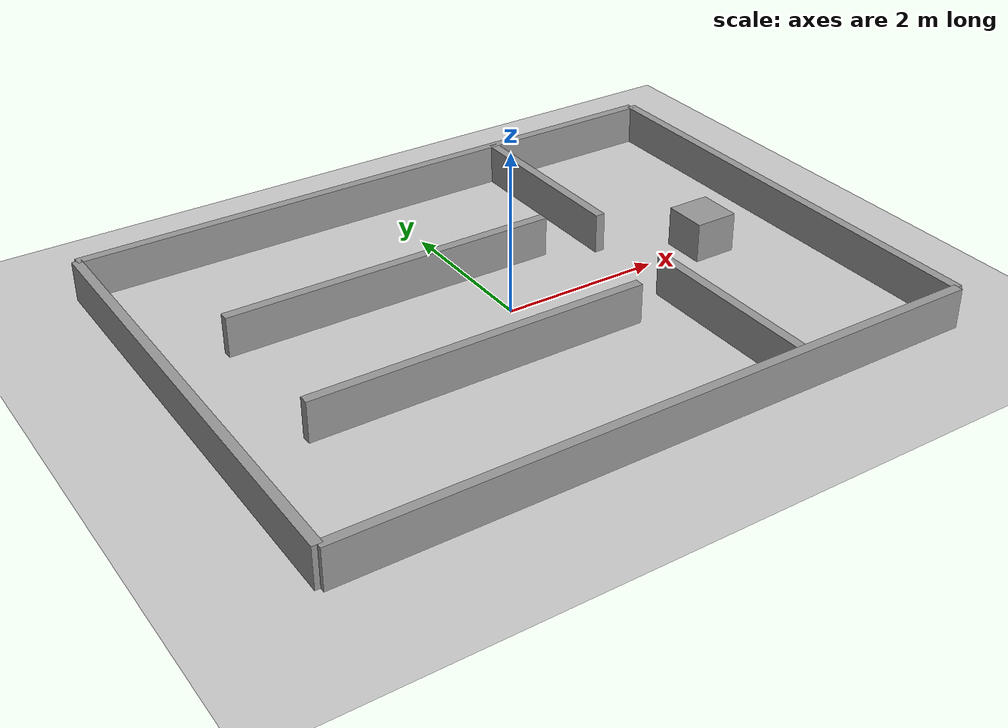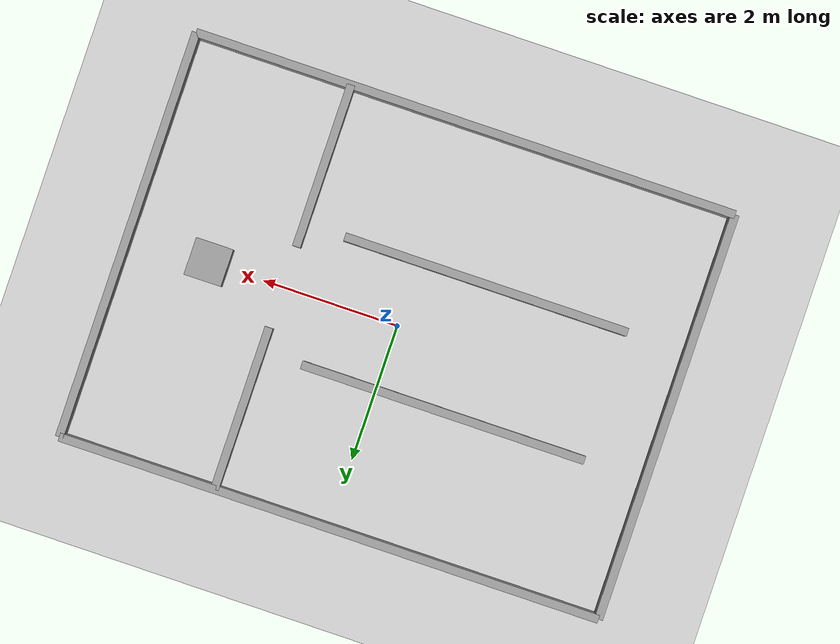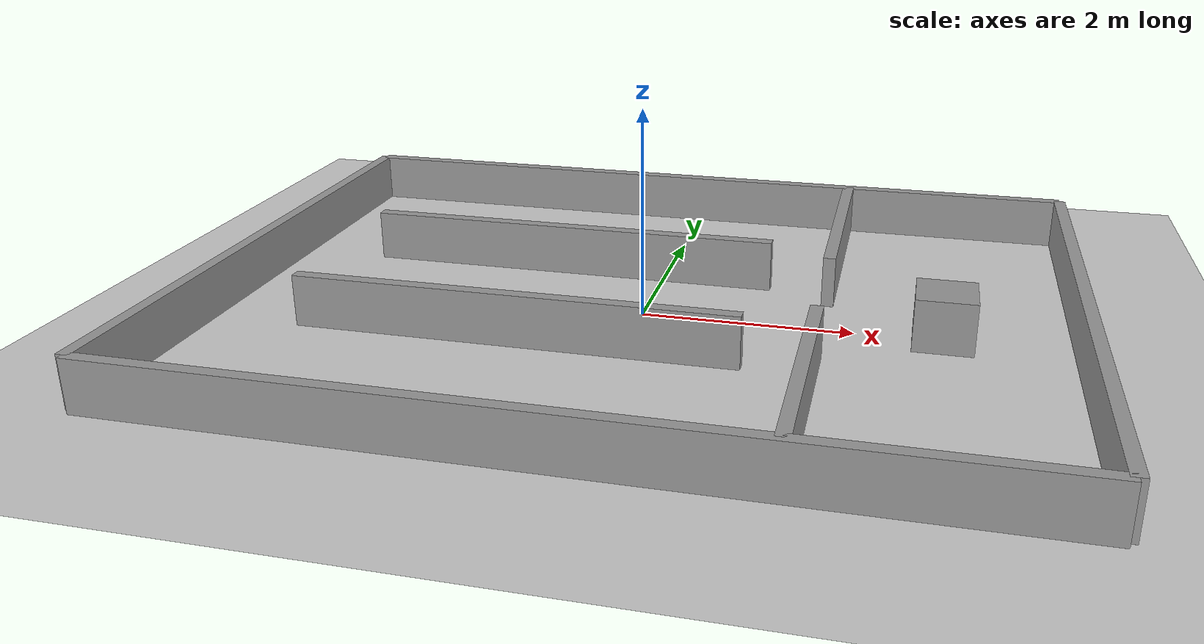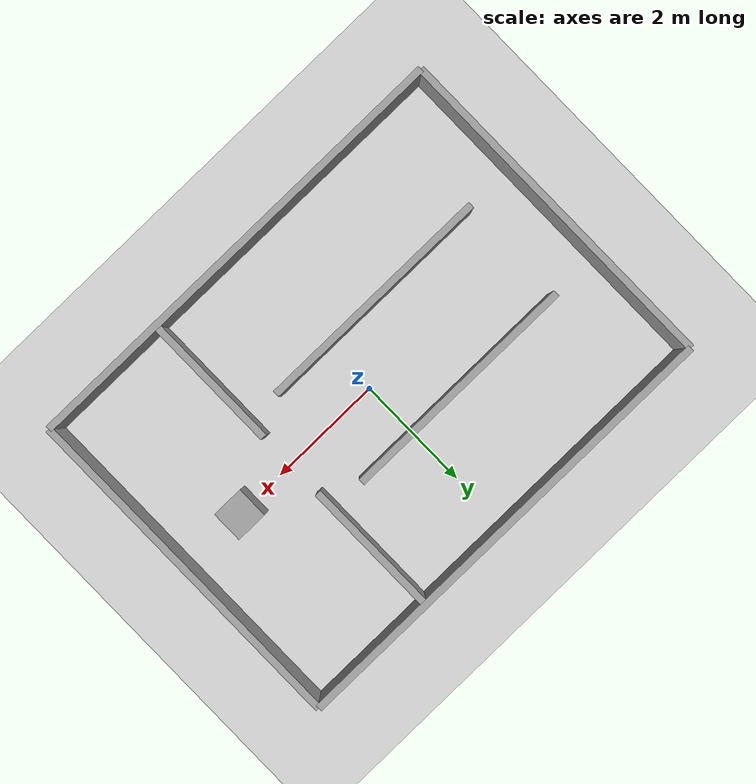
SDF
<?xml version="1.0"?>
<sdf version="1.6">
  <world name="default">
    <include>
      <uri>model://ground_plane</uri>
    </include>
    <include>
      <uri>model://sun</uri>
    </include>
    <scene>
      <shadows>false</shadows>
    </scene>
    <gui fullscreen="0">
      <camera name="user_camera">
        <pose frame="">0 0 12 0 1.5708 0</pose>
        <view_controller>orbit</view_controller>
        <projection_type>perspective</projection_type>
      </camera>
    </gui>
    <physics type="ode">
      <real_time_update_rate>1000.0</real_time_update_rate>
      <max_step_size>0.001</max_step_size>
      <real_time_factor>1</real_time_factor>
    </physics>
    <model name="north_wall">
      <static>true</static>
      <pose>0.000 3.000 0.250 0 0 0</pose>
      <link name="link">
        <collision name="collision">
          <geometry><box><size>8.000 0.120 0.500</size></box></geometry>
        </collision>
        <visual name="visual">
          <geometry><box><size>8.000 0.120 0.500</size></box></geometry>
          <material>
            <script>
              <uri>file://media/materials/scripts/gazebo.material</uri>
              <name>Gazebo/Grey</name>
            </script>
          </material>
        </visual>
      </link>
    </model>
    <model name="south_wall">
      <static>true</static>
      <pose>0.000 -3.000 0.250 0 0 0</pose>
      <link name="link">
        <collision name="collision">
          <geometry><box><size>8.000 0.120 0.500</size></box></geometry>
        </collision>
        <visual name="visual">
          <geometry><box><size>8.000 0.120 0.500</size></box></geometry>
          <material>
            <script>
              <uri>file://media/materials/scripts/gazebo.material</uri>
              <name>Gazebo/Grey</name>
            </script>
          </material>
        </visual>
      </link>
    </model>
    <model name="west_wall">
      <static>true</static>
      <pose>-4.000 0.000 0.250 0 0 0</pose>
      <link name="link">
        <collision name="collision">
          <geometry><box><size>0.120 6.000 0.500</size></box></geometry>
        </collision>
        <visual name="visual">
          <geometry><box><size>0.120 6.000 0.500</size></box></geometry>
          <material>
            <script>
              <uri>file://media/materials/scripts/gazebo.material</uri>
              <name>Gazebo/Grey</name>
            </script>
          </material>
        </visual>
      </link>
    </model>
    <model name="east_wall">
      <static>true</static>
      <pose>4.000 0.000 0.250 0 0 0</pose>
      <link name="link">
        <collision name="collision">
          <geometry><box><size>0.120 6.000 0.500</size></box></geometry>
        </collision>
        <visual name="visual">
          <geometry><box><size>0.120 6.000 0.500</size></box></geometry>
          <material>
            <script>
              <uri>file://media/materials/scripts/gazebo.material</uri>
              <name>Gazebo/Grey</name>
            </script>
          </material>
        </visual>
      </link>
    </model>
    <model name="left_corridor_wall">
      <static>true</static>
      <pose>-1.000 0.950 0.250 0 0 0</pose>
      <link name="link">
        <collision name="collision">
          <geometry><box><size>4.200 0.120 0.500</size></box></geometry>
        </collision>
        <visual name="visual">
          <geometry><box><size>4.200 0.120 0.500</size></box></geometry>
          <material>
            <script>
              <uri>file://media/materials/scripts/gazebo.material</uri>
              <name>Gazebo/Grey</name>
            </script>
          </material>
        </visual>
      </link>
    </model>
    <model name="right_corridor_wall">
      <static>true</static>
      <pose>-1.000 -0.950 0.250 0 0 0</pose>
      <link name="link">
        <collision name="collision">
          <geometry><box><size>4.200 0.120 0.500</size></box></geometry>
        </collision>
        <visual name="visual">
          <geometry><box><size>4.200 0.120 0.500</size></box></geometry>
          <material>
            <script>
              <uri>file://media/materials/scripts/gazebo.material</uri>
              <name>Gazebo/Grey</name>
            </script>
          </material>
        </visual>
      </link>
    </model>
    <model name="door_top">
      <static>true</static>
      <pose>1.700 1.800 0.250 0 0 0</pose>
      <link name="link">
        <collision name="collision">
          <geometry><box><size>0.120 2.400 0.500</size></box></geometry>
        </collision>
        <visual name="visual">
          <geometry><box><size>0.120 2.400 0.500</size></box></geometry>
          <material>
            <script>
              <uri>file://media/materials/scripts/gazebo.material</uri>
              <name>Gazebo/Grey</name>
            </script>
          </material>
        </visual>
      </link>
    </model>
    <model name="door_bottom">
      <static>true</static>
      <pose>1.700 -1.800 0.250 0 0 0</pose>
      <link name="link">
        <collision name="collision">
          <geometry><box><size>0.120 2.400 0.500</size></box></geometry>
        </collision>
        <visual name="visual">
          <geometry><box><size>0.120 2.400 0.500</size></box></geometry>
          <material>
            <script>
              <uri>file://media/materials/scripts/gazebo.material</uri>
              <name>Gazebo/Grey</name>
            </script>
          </material>
        </visual>
      </link>
    </model>
    <model name="goal_side_block">
      <static>true</static>
      <pose>2.800 0.000 0.250 0 0 0</pose>
      <link name="link">
        <collision name="collision">
          <geometry><box><size>0.550 0.550 0.500</size></box></geometry>
        </collision>
        <visual name="visual">
          <geometry><box><size>0.550 0.550 0.500</size></box></geometry>
          <material>
            <script>
              <uri>file://media/materials/scripts/gazebo.material</uri>
              <name>Gazebo/Grey</name>
            </script>
          </material>
        </visual>
      </link>
    </model>
  </world>
</sdf>
